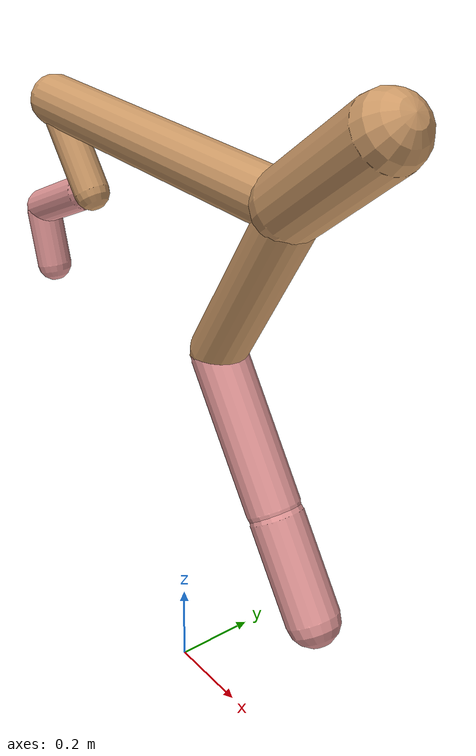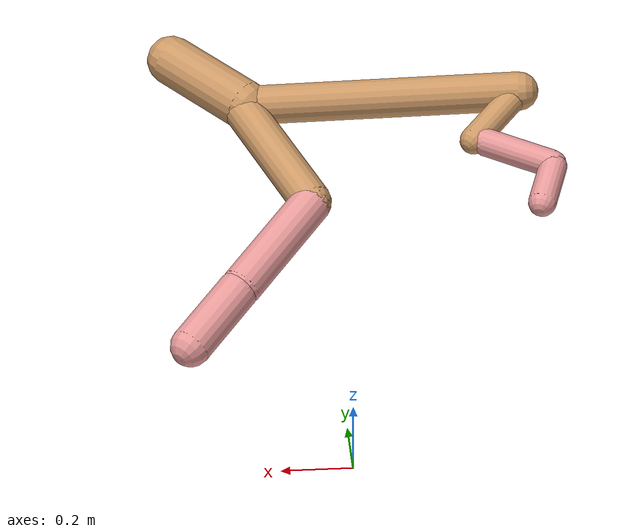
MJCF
<mujoco model="cheetah">
  <compiler angle="radian" coordinate="local" inertiafromgeom="true" settotalmass="14" />
  <default>
    <joint armature=".1" damping=".01" limited="true" solimplimit="0 .8 .03" solreflimit=".02 1" stiffness="8" />
    <geom conaffinity="0" condim="3" contype="1" friction="0.8 .1 .1" rgba="0.8 0.6 .4 1" solimp="0.0 0.8 0.01" solref="0.02 1" />
    <motor ctrllimited="true" ctrlrange="-1 1" />
  </default>
  <size nstack="300000" nuser_geom="1" />
  <option gravity="0 0 -9.81" timestep="0.01" />
  <worldbody>
    <body name="torso" pos="0.0 0.0 1.319266675796432">
      <joint armature="0" axis="1 0 0" damping="0" limited="false" name="ignorex" pos="0 0 0" stiffness="0" type="slide" />
      <joint armature="0" axis="0 0 1" damping="0" limited="false" name="ignorez" pos="0 0 0" stiffness="0" type="slide" />
      <joint armature="0" axis="0 1 0" damping="0" limited="false" name="ignorey" pos="0 0 0" stiffness="0" type="hinge" />
      <geom fromto="-0.5 0.0 0.0 0.3463264122151255 0.0 0.0" name="torso" size="0.05925192722287122" type="capsule" />
      <geom axisangle="0 1 0 .87" name="head" pos="0.4463264122151255 0.0 0.1" size="0.07635241931897176 0.15" type="capsule" />

      <body name="bthigh" pos="-.5 0 0">
        <joint axis="0 1 0" damping="6" name="bthigh" pos="0 0 0" range="-.52 1.05" stiffness="240" type="hinge" />
        <geom axisangle="0 1 0 -3.8" name="bthigh" pos="0.07585730685455769 0.0 -0.098614498910925" size="0.04198155472485021 0.10540303912006228" type="capsule" />
        <body name="bshin" pos="0.11171461370911537 0.0 -0.18722899782184999">
          <joint axis="0 1 0" damping="4.5" name="bshin" pos="0 0 0" range="-.785 .785" stiffness="180" type="hinge" />
          <geom axisangle="0 1 0 -2.03" name="bshin" pos="-0.10336213949105907 0.0 -0.05168106974552954" rgba="0.9 0.6 0.6 1" size="0.04198155472485021 0.10903762667592651" type="capsule" />
          <body name="bfoot" pos="-0.20672427898211815 0.0 -0.10336213949105907">
            <joint axis="0 1 0" damping="3" name="bfoot" pos="0 0 0" range="-.4 .785" stiffness="120" type="hinge" />
            <geom axisangle="0 1 0 -.27" name="bfoot" pos="0.022415364912988914 0.0 -0.07247634655199749" rgba="0.9 0.6 0.6 1" size="0.04198155472485021 0.06833024605024728" type="capsule" />
            <inertial mass="10" />
          </body>
        </body>
      </body>
      <body name="fthigh" pos="0.3463264122151255 0.0 0.0">
        <joint axis="0 1 0" damping="4.5" name="fthigh" pos="0 0 0" range="-1.5 0.8" stiffness="180" type="hinge" />
        <geom axisangle="0 1 0 .52" name="fthigh" pos="-0.11341010581156541 0.0 -0.1944173242483978" size="0.06050372777413678 0.21915320908046595" type="capsule" />
        <body name="fshin" pos="-0.22682021162313082 0.0 -0.3888346484967956">
          <joint axis="0 1 0" damping="3" name="fshin" pos="0 0 0" range="-1.2 1.1" stiffness="120" type="hinge" />
          <geom axisangle="0 1 0 -.6" name="fshin" pos="0.10520180714736112 0.0 -0.14566404066557692" rgba="0.9 0.6 0.6 1" size="0.06050372777413678 0.17466345986864204" type="capsule" />
          <body name="ffoot" pos="0.21040361429472224 0.0 -0.29132808133115384">
            <joint axis="0 1 0" damping="1.5" name="ffoot" pos="0 0 0" range="-3.1 -0.3" stiffness="60" type="hinge" />
            <geom axisangle="0 1 0 -.6" name="ffoot" pos="0.06952000096120053 0.0 -0.10814222371742306" rgba="0.9 0.6 0.6 1" size="0.06050372777413678 0.11534379425287683" type="capsule" />
            <inertial mass="10" />
          </body>
        </body>
      </body>
    </body>
  </worldbody>
  <actuator>
    <motor gear="120" joint="bthigh" name="bthigh" />
    <motor gear="90" joint="bshin" name="bshin" />
    <motor gear="60" joint="bfoot" name="bfoot" />
    <motor gear="120" joint="fthigh" name="fthigh" />
    <motor gear="60" joint="fshin" name="fshin" />
    <motor gear="30" joint="ffoot" name="ffoot" />
  </actuator>
</mujoco>
